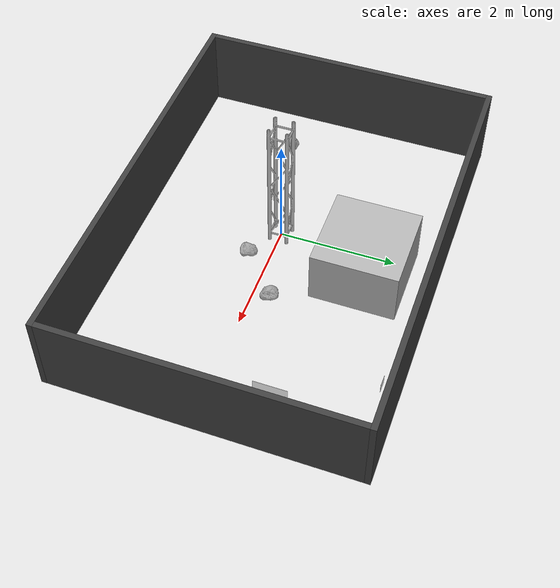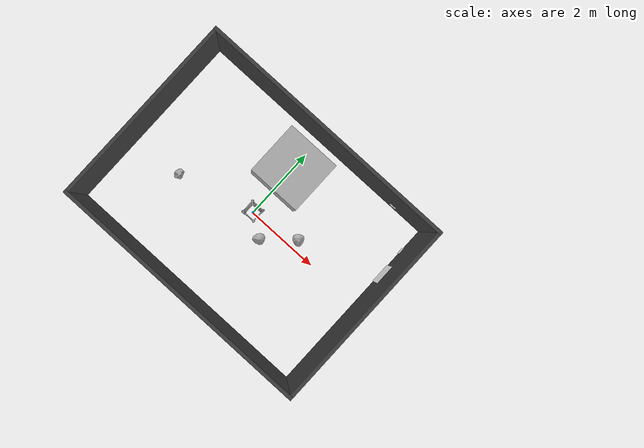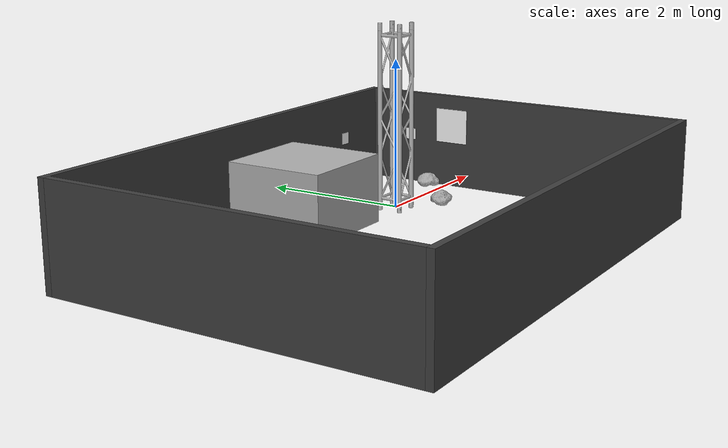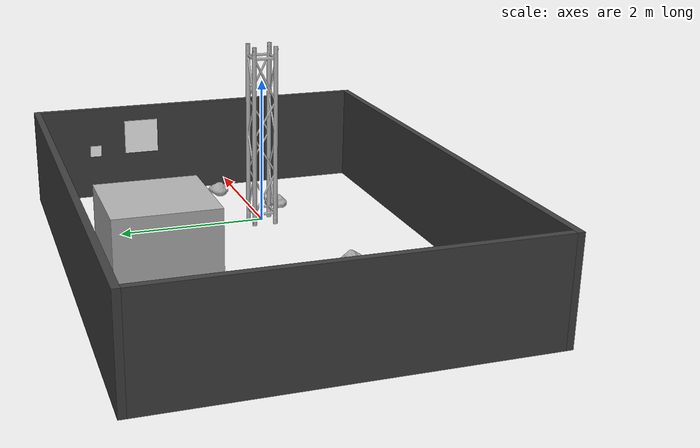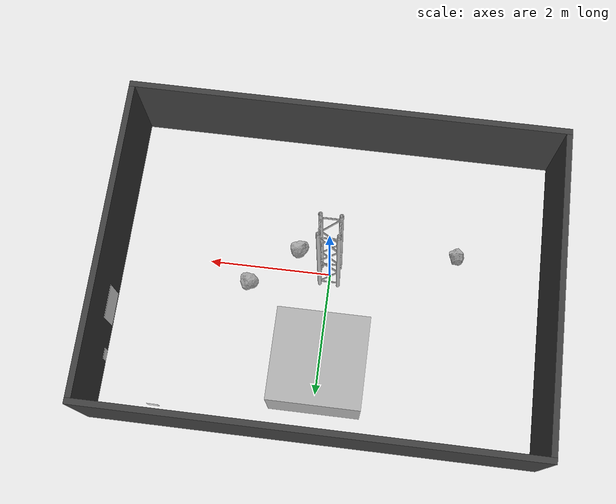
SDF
<sdf version="1.7">
 <world name="default">
  <plugin filename="gz-sim-physics-system" name="gz::sim::systems::Physics"/>
  <plugin filename="gz-sim-user-commands-system" name="gz::sim::systems::UserCommands"/>
  <plugin filename="gz-sim-scene-broadcaster-system" name="gz::sim::systems::SceneBroadcaster"/>
  <plugin filename="gz-sim-sensors-system" name="gz::sim::systems::Sensors">
   <render_engine>ogre2</render_engine>
  </plugin>
  <policies><include_gui_default_plugins>true</include_gui_default_plugins></policies>
  <light name="sun" type="directional">
   <cast_shadows>0</cast_shadows>
   <pose>0 0 10 0 0 0</pose>
   <diffuse>0.4 0.4 0.4 1</diffuse>
   <specular>0.1 0.1 0.1 1</specular>
   <attenuation>
    <range>500</range>
    <constant>0.8</constant>
    <linear>0.02</linear>
    <quadratic>0.001</quadratic>
   </attenuation>
   <direction>0 0 -0.9</direction>
  </light>
  <scene><ambient>0.4 0.4 0.4 1</ambient><shadows>0</shadows></scene>
  <physics type="ode">
   <max_step_size>0.01</max_step_size>
   <real_time_factor>1</real_time_factor>
   <real_time_update_rate>100</real_time_update_rate>
   <ode><constraints><erp>0.8</erp><contact_surface_layer>0.1</contact_surface_layer></constraints></ode>
  </physics>
  <gravity>0 0 -9.81</gravity>
  <model name="arena_wall_long">
   <pose>0 -2.68 0.1 0 0 0</pose>
   <static>1</static>
   <link name="arena_wall_long_link">
    <visual name="arena_wall_long">
     <geometry><box><size>7.42 0.1 1.5</size></box></geometry>
     <material>
      <pbr><metal><albedo_map>model://walls/wall_texture.png</albedo_map></metal></pbr>
      <ambient>0.25 0.25 0.25 1.0</ambient>
      <diffuse>0.25 0.25 0.25 1.0</diffuse>
      <specular>0.25 0.25 0.25 1.0</specular>
     </material>
    </visual>
    <collision name="arena_wall_long_collision">
     <geometry><box><size>7.42 0.1 1.5</size></box></geometry>
     <surface><friction><ode><mu>0.3</mu><mu2>0.3</mu2></ode></friction></surface>
    </collision>
   </link>
  </model>
  <model name="arena_wall_long_2">
   <pose>0 2.68 0.1 0 0 0</pose>
   <static>1</static>
   <link name="arena_wall_long_2_link">
    <visual name="arena_wall_long_2">
     <geometry><box><size>7.42 0.1 1.5</size></box></geometry>
     <material>
      <pbr><metal><albedo_map>model://walls/wall_texture.png</albedo_map></metal></pbr>
      <ambient>0.25 0.25 0.25 1.0</ambient>
      <diffuse>0.25 0.25 0.25 1.0</diffuse>
      <specular>0.25 0.25 0.25 1.0</specular>
     </material>
    </visual>
    <collision name="arena_wall_long_2_collision">
     <geometry><box><size>7.42 0.1 1.5</size></box></geometry>
     <surface><friction><ode><mu>0.3</mu><mu2>0.3</mu2></ode></friction></surface>
    </collision>
   </link>
  </model>
  <model name="arena_wall_short">
   <pose>3.66 0 0.1 0 0 0</pose>
   <static>1</static>
   <link name="arena_wall_short_link">
    <visual name="arena_wall_short">
     <geometry><box><size>0.1 5.26 1.5</size></box></geometry>
     <material>
      <pbr><metal><albedo_map>model://walls/wall_texture.png</albedo_map></metal></pbr>
      <ambient>0.25 0.25 0.25 1.0</ambient>
      <diffuse>0.25 0.25 0.25 1.0</diffuse>
      <specular>0.25 0.25 0.25 1.0</specular>
     </material>
    </visual>
    <collision name="arena_wall_short_collision">
     <geometry><box><size>0.1 5.26 1.5</size></box></geometry>
     <surface><friction><ode><mu>0.3</mu><mu2>0.3</mu2></ode></friction></surface>
    </collision>
   </link>
  </model>
  <model name="arena_wall_short_2">
   <pose>-3.66 0 0.1 0 0 0</pose>
   <static>1</static>
   <link name="arena_wall_short_2_link">
    <visual name="arena_wall_short_2">
     <geometry><box><size>0.1 5.26 1.5</size></box></geometry>
     <material>
      <pbr><metal><albedo_map>model://walls/wall_texture.png</albedo_map></metal></pbr>
      <ambient>0.25 0.25 0.25 1.0</ambient>
      <diffuse>0.25 0.25 0.25 1.0</diffuse>
      <specular>0.25 0.25 0.25 1.0</specular>
     </material>
    </visual>
    <collision name="arena_wall_short_2_collision">
     <geometry><box><size>0.1 5.26 1.5</size></box></geometry>
     <surface><friction><ode><mu>0.3</mu><mu2>0.3</mu2></ode></friction></surface>
    </collision>
   </link>
  </model>
  <model name="column">
   <pose>0 0 -0.02 0 0 0</pose>
   <static>1</static>
   <link name="column_link">
    <visual name="column">
     <geometry><mesh><uri>model://column/column.stl</uri><scale>2.5 2.5 2.5</scale></mesh></geometry>
     <material>
      <ambient>0.75 0.75 0.75 1.0</ambient>
      <diffuse>0.75 0.75 0.75 1.0</diffuse>
      <specular>0.75 0.75 0.75 1.0</specular>
      <emissive>0 0 0 0</emissive>
     </material>
    </visual>
    <collision name="column_collision">
     <geometry><mesh><uri>model://column/column.stl</uri><scale>2.5 2.5 2.5</scale></mesh></geometry>
     <surface><friction><ode><mu>0.3</mu><mu2>0.3</mu2></ode></friction></surface>
    </collision>
   </link>
  </model>
  <model name="rock_rough">
   <pose>-2.01943 -0.546468 0.05 0 0 -2.17367</pose>
   <self_collide>1</self_collide>
   <static>0</static>
   <link name="rock_rough_link">
    <inertial><mass>5.0</mass><inertia><ixx>3.0</ixx><iyy>3.0</iyy><izz>3.0</izz></inertia></inertial>
    <velocity_decay><linear>0.39</linear><angular>0.9</angular></velocity_decay>
    <visual name="rock_rough">
     <geometry><mesh><uri>model://rock_rough/rock_rough.stl</uri><scale>1 1 1</scale></mesh></geometry>
     <material>
      <ambient>0.65 0.65 0.65 1</ambient>
      <diffuse>0.65 0.65 0.65 1</diffuse>
      <specular>0.65 0.65 0.65 1</specular>
      <emissive>0 0 0 0</emissive>
     </material>
    </visual>
    <collision name="rock_rough_collision">
     <geometry><mesh><uri>model://rock_rough/rock_rough.stl</uri><scale>1 1 1</scale></mesh></geometry>
     <surface><friction><ode><mu>1.5</mu><mu2>1.5</mu2></ode></friction></surface>
    </collision>
   </link>
  </model>
  <model name="rock_round">
   <pose>1.32307 0.270163 0.05 0 0 0.846674</pose>
   <self_collide>1</self_collide>
   <static>0</static>
   <link name="rock_round_link">
    <inertial><mass>5.0</mass><inertia><ixx>3.0</ixx><iyy>3.0</iyy><izz>3.0</izz></inertia></inertial>
    <velocity_decay><linear>0.39</linear><angular>0.9</angular></velocity_decay>
    <visual name="rock_round">
     <geometry><mesh><uri>model://rock_round/rock_round.stl</uri><scale>1 1 1</scale></mesh></geometry>
     <material>
      <ambient>0.65 0.65 0.65 1</ambient>
      <diffuse>0.65 0.65 0.65 1</diffuse>
      <specular>0.65 0.65 0.65 1</specular>
      <emissive>0 0 0 0</emissive>
     </material>
    </visual>
    <collision name="rock_round_collision">
     <geometry><mesh><uri>model://rock_round/rock_round.stl</uri><scale>1 1 1</scale></mesh></geometry>
    </collision>
   </link>
  </model>
  <model name="rock_round_2">
   <pose>0.56 -0.39 0.05 0 0 -0.80</pose>
   <self_collide>1</self_collide>
   <static>0</static>
   <link name="rock_round_2_link">
    <inertial><mass>5.0</mass><inertia><ixx>3.0</ixx><iyy>3.0</iyy><izz>3.0</izz></inertia></inertial>
    <velocity_decay><linear>0.39</linear><angular>0.9</angular></velocity_decay>
    <visual name="rock_round_2">
     <geometry><mesh><uri>model://rock_round/rock_round.stl</uri><scale>1 1 1</scale></mesh></geometry>
     <material>
      <ambient>0.65 0.65 0.65 1</ambient>
      <diffuse>0.65 0.65 0.65 1</diffuse>
      <specular>0.65 0.65 0.65 1</specular>
      <emissive>0 0 0 0</emissive>
     </material>
    </visual>
    <collision name="rock_round_2_collision">
     <geometry><mesh><uri>model://rock_round/rock_round.stl</uri><scale>1 1 1</scale></mesh></geometry>
    </collision>
   </link>
  </model>
  <model name="tag_36_11_00482">
   <pose>3.4 1.8 0.2 0 -1.58 0</pose>
   <static>1</static>
   <link name="link">
    <visual name="tag_36_11_00482">
     <geometry><box><size>0.18125 0.18125 0.005</size></box></geometry>
     <material>
      <pbr>
       <metal>
        <albedo_map>model://apriltags/tag_36_11_00482/materials/textures/tag_36_11_00482.png</albedo_map>
       </metal>
      </pbr>
      <ambient>1.0 1.0 1.0 1.0</ambient>
      <diffuse>1.0 1.0 1.0 1.0</diffuse>
      <specular>1.0 1.0 1.0 1.0</specular>
      <emissive>0 0 0 1.0</emissive>
     </material>
    </visual>
    <collision name="tag_36_11_00482_collision">
     <geometry><box><size>0.18125 0.18125 0.005</size></box></geometry>
    </collision>
   </link>
  </model>
  <model name="tag_36_11_00301">
   <pose>2.5 2.5 0.2 3.14 -1.58 -1.58</pose>
   <static>1</static>
   <link name="link">
    <visual name="tag_36_11_00301">
     <geometry><box><size>0.18125 0.18125 0.005</size></box></geometry>
     <material>
      <pbr>
       <metal>
        <albedo_map>model://apriltags/tag_36_11_00301/materials/textures/tag_36_11_00301.png</albedo_map>
       </metal>
      </pbr>
      <ambient>1.0 1.0 1.0 1.0</ambient>
      <diffuse>1.0 1.0 1.0 1.0</diffuse>
      <specular>1.0 1.0 1.0 1.0</specular>
      <emissive>0 0 0 1.0</emissive>
     </material>
    </visual>
    <collision name="tag_36_11_00301_collision">
     <geometry><box><size>0.18125 0.18125 0.005</size></box></geometry>
    </collision>
   </link>
  </model>
  <model name="tag_36_11_00476">
   <pose>3.4 1.04 0.4 0 -1.58 0</pose>
   <static>1</static>
   <link name="link">
    <visual name="tag_36_11_00476">
     <geometry><box><size>0.5468 0.5468 0.005</size></box></geometry>
     <material>
      <pbr>
       <metal>
        <albedo_map>model://apriltags/tag_36_11_00476/materials/textures/tag_36_11_00476.png</albedo_map>
       </metal>
      </pbr>
      <ambient>1.0 1.0 1.0 1.0</ambient>
      <diffuse>1.0 1.0 1.0 1.0</diffuse>
      <specular>1.0 1.0 1.0 1.0</specular>
      <emissive>0 0 0 1.0</emissive>
     </material>
    </visual>
    <collision name="tag_36_11_00476_collision">
     <geometry><box><size>0.5468 0.5468 0.005</size></box></geometry>
    </collision>
   </link>
  </model>
  <model name="box_1m">
   <static>true</static>
   <pose>0 1.5 0 0 0 0</pose>
   <link name="link">
    <collision name="collision"><geometry><box><size>1.5 1.5 1</size></box></geometry></collision>
    <visual name="visual">
     <geometry><box><size>1.5 1.5 1</size></box></geometry>
     <material><ambient>0.7 0.7 0.7 1</ambient><diffuse>0.7 0.7 0.7 1</diffuse></material>
    </visual>
   </link>
  </model>
 </world>
</sdf>
